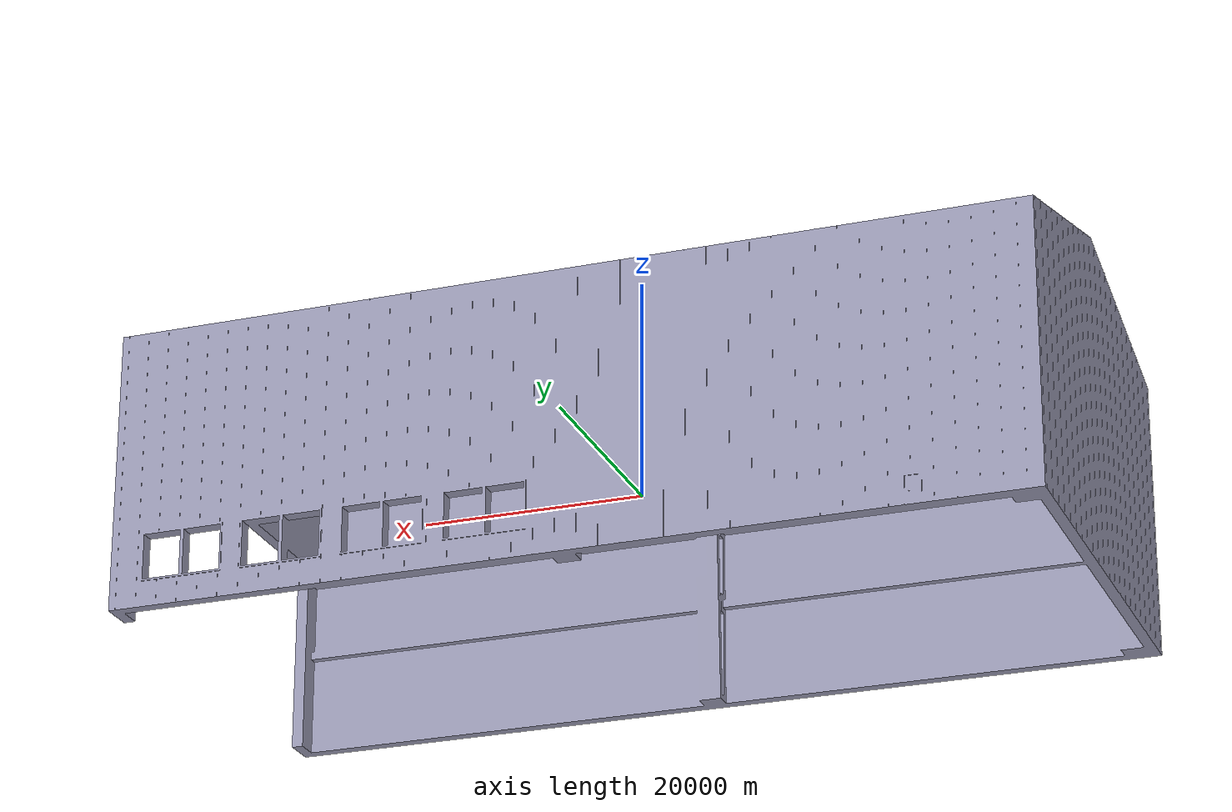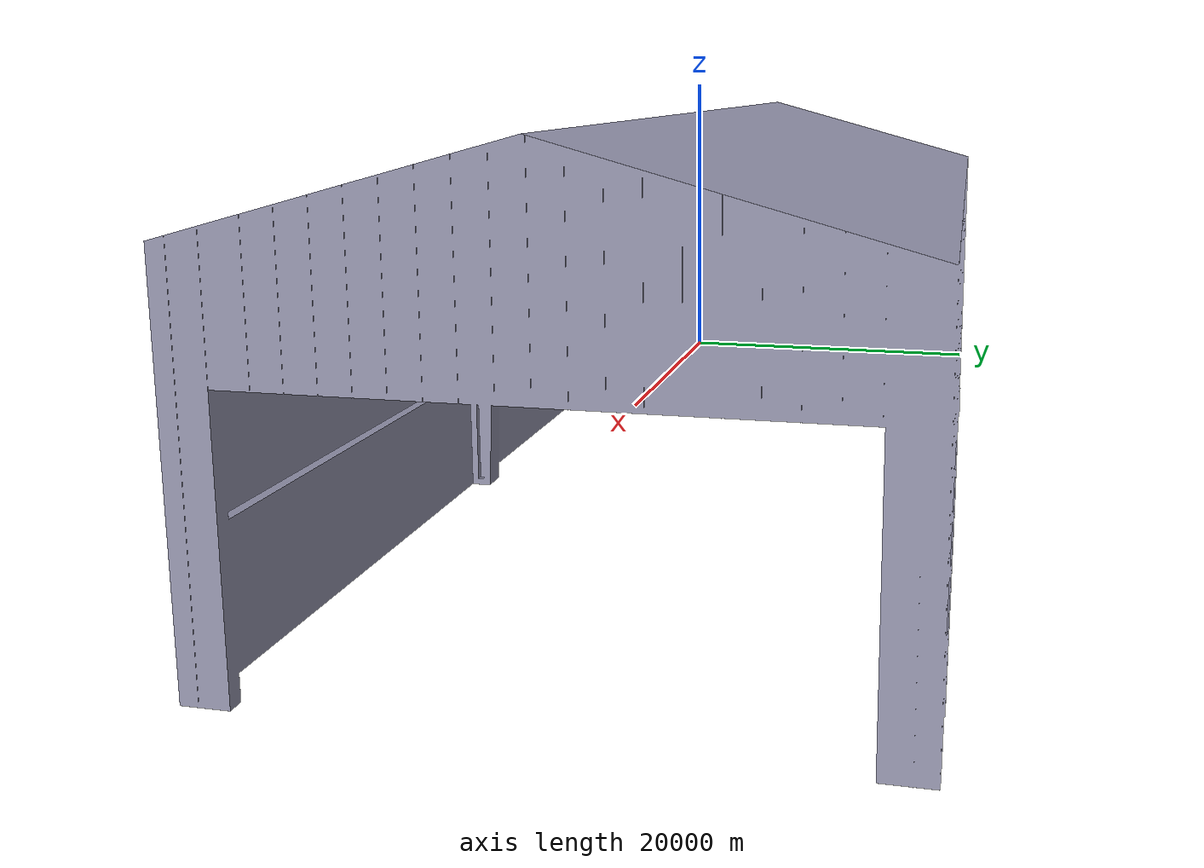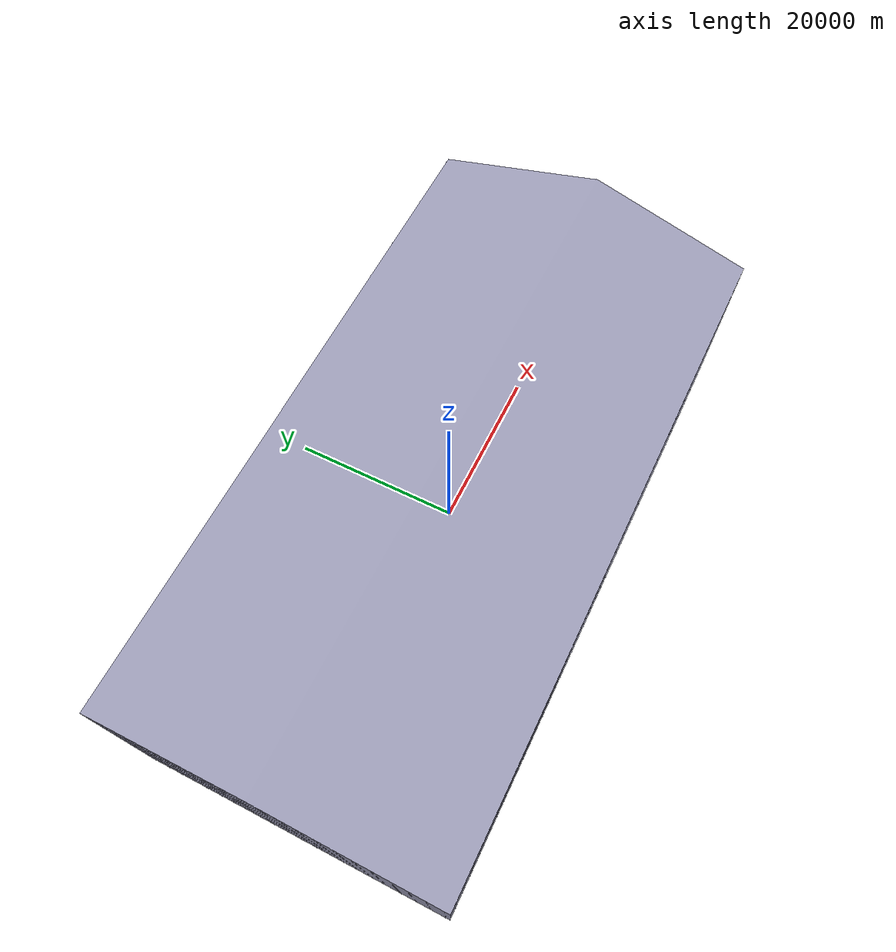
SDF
<?xml version="1.0" ?>
<sdf version='1.6'>
  <model name="hangar">

    <static>true</static>

    <link name="hangar">
      <visual name="hangar_visual">
        <geometry>
          <mesh>
            <uri>model://models/hangar/meshes/hangar.STL</uri>
            <scale>1 1 1</scale>
          </mesh>
        </geometry>
        <material>
          <ambient> 0.6 0.6 0.7 1</ambient>
          <diffuse> 0.6 0.6 0.7 1</diffuse>
          <specular>0.1 0.1 0.1 1</specular>
          <emissive>0.1 0.1 0.1 1</emissive>
        </material>
      </visual>

      <collision name="hangar_colission">
        <geometry>
          <mesh>
            <uri>model://models/hangar/meshes/hangar.STL</uri>
            <scale>1 1 1</scale>
          </mesh>
        </geometry>
        <max_contacts>10</max_contacts>
        <surface>
          <bounce/>
          <friction>
            <ode/>
          </friction>
          <contact>
            <ode/>
          </contact>
        </surface>
      </collision>

    </link>

  </model>
</sdf>
